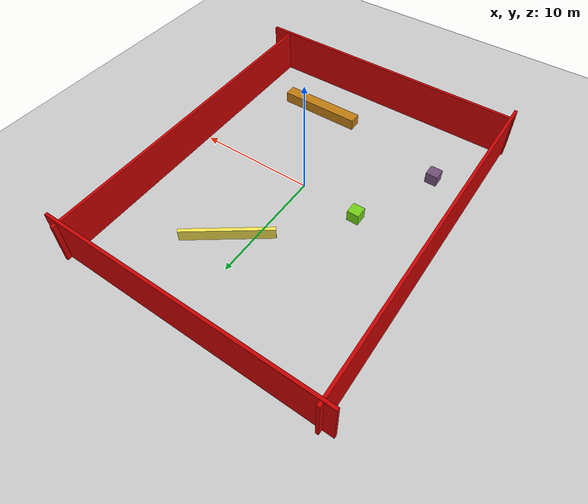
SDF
<sdf version="1.7">
 <world name="default">
  <light name="sun" type="directional">
   <pose>0 0 10 0 -0 0</pose>
   <diffuse>0.8 0.8 0.8 1</diffuse>
   <specular>0.2 0.2 0.2 1</specular>
   <attenuation>
    <range>1000</range>
    <constant>0.9</constant>
    <linear>0.01</linear>
    <quadratic>0.001</quadratic>
   </attenuation>
   <direction>-0.5 0.1 -0.9</direction>
   <spot><inner_angle>0</inner_angle><outer_angle>0</outer_angle><falloff>0</falloff></spot>
  </light>
  <model name="ground_plane">
   <static>1</static>
   <link name="link">
    <collision name="collision">
     <geometry><plane><normal>0 0 1</normal><size>100 100</size></plane></geometry>
     <surface>
      <contact><collide_bitmask>65535</collide_bitmask></contact>
      <friction><ode><mu>100</mu><mu2>50</mu2></ode></friction>
     </surface>
    </collision>
    <visual name="visual">
     <cast_shadows>0</cast_shadows>
     <geometry><plane><normal>0 0 1</normal><size>100 100</size></plane></geometry>
     <material>
      <script><uri>file://media/materials/scripts/gazebo.material</uri><name>Gazebo/Grey</name></script>
     </material>
    </visual>
   </link>
  </model>
  <gravity>0 0 -9.8</gravity>
  <magnetic_field>6e-06 2.3e-05 -4.2e-05</magnetic_field>
  <atmosphere type="adiabatic"/>
  <physics type="ode">
   <max_step_size>0.001</max_step_size>
   <real_time_factor>1</real_time_factor>
   <real_time_update_rate>1000</real_time_update_rate>
  </physics>
  <scene><ambient>0.4 0.4 0.4 1</ambient><background>0.7 0.7 0.7 1</background><shadows>1</shadows></scene>
  <spherical_coordinates>
   <surface_model>EARTH_WGS84</surface_model>
   <latitude_deg>0</latitude_deg>
   <longitude_deg>0</longitude_deg>
   <elevation>0</elevation>
   <heading_deg>0</heading_deg>
  </spherical_coordinates>
  <model name="test_house">
   <link name="link_0">
    <inertial>
     <mass>35.2275</mass>
     <inertia><ixx>103.791</ixx><ixy>0</ixy><ixz>0</ixz><iyy>1777.36</iyy><iyz>0</iyz><izz>1673.93</izz></inertia>
    </inertial>
    <pose>0.416863 18.6965 0.564615 0 -0 0</pose>
    <visual name="visual">
     <geometry><box><size>23.8779 0.248345 5.94087</size></box></geometry>
     <material>
      <lighting>1</lighting>
      <script><uri>file://media/materials/scripts/gazebo.material</uri><name>Gazebo/Grey</name></script>
      <shader type="pixel"><normal_map>__default__</normal_map></shader>
      <ambient>0.8 0 0 1</ambient>
      <diffuse>0.7 0.7 0.7 1</diffuse>
      <specular>0.01 0.01 0.01 1</specular>
      <emissive>0 0 0 1</emissive>
     </material>
    </visual>
    <collision name="collision">
     <geometry><box><size>23.8779 0.248345 5.94087</size></box></geometry>
     <surface>
      <friction>
       <ode><mu>1</mu><mu2>1</mu2><fdir1>0 0 0</fdir1><slip1>0</slip1><slip2>0</slip2></ode>
       <torsional>
        <coefficient>1</coefficient>
        <patch_radius>0</patch_radius>
        <surface_radius>0</surface_radius>
        <use_patch_radius>1</use_patch_radius>
        <ode><slip>0</slip></ode>
       </torsional>
      </friction>
      <bounce><restitution_coefficient>0</restitution_coefficient><threshold>1e+06</threshold></bounce>
      <contact>
       <collide_without_contact>0</collide_without_contact>
       <collide_without_contact_bitmask>1</collide_without_contact_bitmask>
       <collide_bitmask>1</collide_bitmask>
       <ode>
        <soft_cfm>0</soft_cfm>
        <soft_erp>0.2</soft_erp>
        <kp>1e+13</kp>
        <kd>1</kd>
        <max_vel>0.01</max_vel>
        <min_depth>0</min_depth>
       </ode>
       <bullet>
        <split_impulse>1</split_impulse>
        <split_impulse_penetration_threshold>-0.01</split_impulse_penetration_threshold>
        <soft_cfm>0</soft_cfm>
        <soft_erp>0.2</soft_erp>
        <kp>1e+13</kp>
        <kd>1</kd>
       </bullet>
      </contact>
     </surface>
    </collision>
   </link>
   <link name="link_0_clone">
    <inertial>
     <mass>33.2872</mass>
     <inertia><ixx>87.5845</ixx><ixy>0</ixy><ixz>0</ixz><iyy>1668.98</iyy><iyz>0</iyz><izz>1581.74</izz></inertia>
    </inertial>
    <pose>1.37652 -9.38264 0.564615 0 -0 0</pose>
    <visual name="visual">
     <geometry><box><size>23.8779 0.248345 5.6136</size></box></geometry>
     <material>
      <lighting>1</lighting>
      <script><uri>file://media/materials/scripts/gazebo.material</uri><name>Gazebo/Grey</name></script>
      <shader type="pixel"><normal_map>__default__</normal_map></shader>
      <ambient>0.8 0 0 1</ambient>
      <diffuse>0.7 0.7 0.7 1</diffuse>
      <specular>0.01 0.01 0.01 1</specular>
      <emissive>0 0 0 1</emissive>
     </material>
    </visual>
    <collision name="collision">
     <geometry><box><size>23.8779 0.248345 5.6136</size></box></geometry>
     <surface>
      <friction>
       <ode><mu>1</mu><mu2>1</mu2><fdir1>0 0 0</fdir1><slip1>0</slip1><slip2>0</slip2></ode>
       <torsional>
        <coefficient>1</coefficient>
        <patch_radius>0</patch_radius>
        <surface_radius>0</surface_radius>
        <use_patch_radius>1</use_patch_radius>
        <ode><slip>0</slip></ode>
       </torsional>
      </friction>
      <bounce><restitution_coefficient>0</restitution_coefficient><threshold>1e+06</threshold></bounce>
      <contact>
       <collide_without_contact>0</collide_without_contact>
       <collide_without_contact_bitmask>1</collide_without_contact_bitmask>
       <collide_bitmask>1</collide_bitmask>
       <ode>
        <soft_cfm>0</soft_cfm>
        <soft_erp>0.2</soft_erp>
        <kp>1e+13</kp>
        <kd>1</kd>
        <max_vel>0.01</max_vel>
        <min_depth>0</min_depth>
       </ode>
       <bullet>
        <split_impulse>1</split_impulse>
        <split_impulse_penetration_threshold>-0.01</split_impulse_penetration_threshold>
        <soft_cfm>0</soft_cfm>
        <soft_erp>0.2</soft_erp>
        <kp>1e+13</kp>
        <kd>1</kd>
       </bullet>
      </contact>
     </surface>
    </collision>
   </link>
   <link name="link_0_clone_0">
    <inertial>
     <mass>37.406</mass>
     <inertia><ixx>87.134</ixx><ixy>0</ixy><ixz>0</ixz><iyy>2622.64</iyy><iyz>0</iyz><izz>2535.89</izz></inertia>
    </inertial>
    <pose>11.5361 4.92739 0.564615 0 0 -1.55758</pose>
    <visual name="visual">
     <geometry><box><size>28.5212 0.248345 5.28122</size></box></geometry>
     <material>
      <lighting>1</lighting>
      <script><uri>file://media/materials/scripts/gazebo.material</uri><name>Gazebo/Grey</name></script>
      <shader type="pixel"><normal_map>__default__</normal_map></shader>
      <ambient>0.8 0 0 1</ambient>
     </material>
    </visual>
    <collision name="collision">
     <geometry><box><size>28.5212 0.248345 5.28122</size></box></geometry>
     <surface>
      <friction>
       <ode><mu>1</mu><mu2>1</mu2><fdir1>0 0 0</fdir1><slip1>0</slip1><slip2>0</slip2></ode>
       <torsional>
        <coefficient>1</coefficient>
        <patch_radius>0</patch_radius>
        <surface_radius>0</surface_radius>
        <use_patch_radius>1</use_patch_radius>
        <ode><slip>0</slip></ode>
       </torsional>
      </friction>
      <bounce><restitution_coefficient>0</restitution_coefficient><threshold>1e+06</threshold></bounce>
      <contact>
       <collide_without_contact>0</collide_without_contact>
       <collide_without_contact_bitmask>1</collide_without_contact_bitmask>
       <collide_bitmask>1</collide_bitmask>
       <ode>
        <soft_cfm>0</soft_cfm>
        <soft_erp>0.2</soft_erp>
        <kp>1e+13</kp>
        <kd>1</kd>
        <max_vel>0.01</max_vel>
        <min_depth>0</min_depth>
       </ode>
       <bullet>
        <split_impulse>1</split_impulse>
        <split_impulse_penetration_threshold>-0.01</split_impulse_penetration_threshold>
        <soft_cfm>0</soft_cfm>
        <soft_erp>0.2</soft_erp>
        <kp>1e+13</kp>
        <kd>1</kd>
       </bullet>
      </contact>
     </surface>
    </collision>
   </link>
   <link name="link_0_clone_1">
    <inertial>
     <mass>43.0353</mass>
     <inertia><ixx>123.451</ixx><ixy>0</ixy><ixz>0</ixz><iyy>3257.53</iyy><iyz>0</iyz><izz>3134.52</izz></inertia>
    </inertial>
    <pose>-10.4308 4.40456 0.564615 0 -0 1.57756</pose>
    <visual name="visual">
     <geometry><box><size>29.563 0.248345 5.86187</size></box></geometry>
     <material>
      <lighting>1</lighting>
      <script><uri>file://media/materials/scripts/gazebo.material</uri><name>Gazebo/Grey</name></script>
      <shader type="pixel"><normal_map>__default__</normal_map></shader>
      <ambient>0.8 0 0 1</ambient>
      <diffuse>0.7 0.7 0.7 1</diffuse>
      <specular>0.01 0.01 0.01 1</specular>
      <emissive>0 0 0 1</emissive>
     </material>
    </visual>
    <collision name="collision">
     <geometry><box><size>29.563 0.248345 5.86187</size></box></geometry>
     <surface>
      <friction>
       <ode><mu>1</mu><mu2>1</mu2><fdir1>0 0 0</fdir1><slip1>0</slip1><slip2>0</slip2></ode>
       <torsional>
        <coefficient>1</coefficient>
        <patch_radius>0</patch_radius>
        <surface_radius>0</surface_radius>
        <use_patch_radius>1</use_patch_radius>
        <ode><slip>0</slip></ode>
       </torsional>
      </friction>
      <bounce><restitution_coefficient>0</restitution_coefficient><threshold>1e+06</threshold></bounce>
      <contact>
       <collide_without_contact>0</collide_without_contact>
       <collide_without_contact_bitmask>1</collide_without_contact_bitmask>
       <collide_bitmask>1</collide_bitmask>
       <ode>
        <soft_cfm>0</soft_cfm>
        <soft_erp>0.2</soft_erp>
        <kp>1e+13</kp>
        <kd>1</kd>
        <max_vel>0.01</max_vel>
        <min_depth>0</min_depth>
       </ode>
       <bullet>
        <split_impulse>1</split_impulse>
        <split_impulse_penetration_threshold>-0.01</split_impulse_penetration_threshold>
        <soft_cfm>0</soft_cfm>
        <soft_erp>0.2</soft_erp>
        <kp>1e+13</kp>
        <kd>1</kd>
       </bullet>
      </contact>
     </surface>
    </collision>
   </link>
   <link name="link_2">
    <inertial>
     <mass>1</mass>
     <inertia>
      <ixx>0.166667</ixx>
      <ixy>0</ixy>
      <ixz>0</ixz>
      <iyy>0.166667</iyy>
      <iyz>0</iyz>
      <izz>0.166667</izz>
     </inertia>
    </inertial>
    <pose>-3.91195 3.91597 0 0 -0 0</pose>
    <visual name="visual">
     <geometry><box><size>1 1 1</size></box></geometry>
     <material>
      <lighting>1</lighting>
      <script><uri>file://media/materials/scripts/gazebo.material</uri><name>Gazebo/Grey</name></script>
      <shader type="pixel"><normal_map>__default__</normal_map></shader>
      <ambient>0.451 0.824 0.086 1</ambient>
      <diffuse>0.7 0.7 0.7 1</diffuse>
      <specular>0.01 0.01 0.01 1</specular>
      <emissive>0 0 0 1</emissive>
     </material>
    </visual>
    <collision name="collision">
     <geometry><box><size>1 1 1</size></box></geometry>
     <surface>
      <friction>
       <ode><mu>1</mu><mu2>1</mu2><fdir1>0 0 0</fdir1><slip1>0</slip1><slip2>0</slip2></ode>
       <torsional>
        <coefficient>1</coefficient>
        <patch_radius>0</patch_radius>
        <surface_radius>0</surface_radius>
        <use_patch_radius>1</use_patch_radius>
        <ode><slip>0</slip></ode>
       </torsional>
      </friction>
      <bounce><restitution_coefficient>0</restitution_coefficient><threshold>1e+06</threshold></bounce>
      <contact>
       <collide_without_contact>0</collide_without_contact>
       <collide_without_contact_bitmask>1</collide_without_contact_bitmask>
       <collide_bitmask>1</collide_bitmask>
       <ode>
        <soft_cfm>0</soft_cfm>
        <soft_erp>0.2</soft_erp>
        <kp>1e+13</kp>
        <kd>1</kd>
        <max_vel>0.01</max_vel>
        <min_depth>0</min_depth>
       </ode>
       <bullet>
        <split_impulse>1</split_impulse>
        <split_impulse_penetration_threshold>-0.01</split_impulse_penetration_threshold>
        <soft_cfm>0</soft_cfm>
        <soft_erp>0.2</soft_erp>
        <kp>1e+13</kp>
        <kd>1</kd>
       </bullet>
      </contact>
     </surface>
    </collision>
   </link>
   <link name="link_3">
    <inertial>
     <mass>2.23749</mass>
     <inertia><ixx>0.204015</ixx><ixy>0</ixy><ixz>0</ixz><iyy>10.0983</iyy><iyz>0</iyz><izz>9.92943</izz></inertia>
    </inertial>
    <pose>2.97623 10.9871 0 0 0 -2.51151</pose>
    <visual name="visual">
     <geometry><box><size>7.29101 0.306861 1</size></box></geometry>
     <material>
      <lighting>1</lighting>
      <script><uri>file://media/materials/scripts/gazebo.material</uri><name>Gazebo/Grey</name></script>
      <shader type="pixel"><normal_map>__default__</normal_map></shader>
      <ambient>0.988 0.914 0.31 1</ambient>
      <diffuse>0.7 0.7 0.7 1</diffuse>
      <specular>0.01 0.01 0.01 1</specular>
      <emissive>0 0 0 1</emissive>
     </material>
    </visual>
    <collision name="collision">
     <geometry><box><size>7.29101 0.306861 1</size></box></geometry>
     <surface>
      <friction>
       <ode><mu>1</mu><mu2>1</mu2><fdir1>0 0 0</fdir1><slip1>0</slip1><slip2>0</slip2></ode>
       <torsional>
        <coefficient>1</coefficient>
        <patch_radius>0</patch_radius>
        <surface_radius>0</surface_radius>
        <use_patch_radius>1</use_patch_radius>
        <ode><slip>0</slip></ode>
       </torsional>
      </friction>
      <bounce><restitution_coefficient>0</restitution_coefficient><threshold>1e+06</threshold></bounce>
      <contact>
       <collide_without_contact>0</collide_without_contact>
       <collide_without_contact_bitmask>1</collide_without_contact_bitmask>
       <collide_bitmask>1</collide_bitmask>
       <ode>
        <soft_cfm>0</soft_cfm>
        <soft_erp>0.2</soft_erp>
        <kp>1e+13</kp>
        <kd>1</kd>
        <max_vel>0.01</max_vel>
        <min_depth>0</min_depth>
       </ode>
       <bullet>
        <split_impulse>1</split_impulse>
        <split_impulse_penetration_threshold>-0.01</split_impulse_penetration_threshold>
        <soft_cfm>0</soft_cfm>
        <soft_erp>0.2</soft_erp>
        <kp>1e+13</kp>
        <kd>1</kd>
       </bullet>
      </contact>
     </surface>
    </collision>
   </link>
   <link name="link_4">
    <inertial>
     <mass>7.09695</mass>
     <inertia><ixx>1.18282</ixx><ixy>0</ixy><ixz>0</ixz><iyy>30.3791</iyy><iyz>0</iyz><izz>30.3791</izz></inertia>
    </inertial>
    <pose>5.20534 -5.18389 0 0 -0 0</pose>
    <visual name="visual">
     <geometry><box><size>7.09698 1 1</size></box></geometry>
     <material>
      <lighting>1</lighting>
      <script><uri>file://media/materials/scripts/gazebo.material</uri><name>Gazebo/Grey</name></script>
      <shader type="pixel"><normal_map>__default__</normal_map></shader>
      <ambient>0.757 0.49 0.067 1</ambient>
      <diffuse>0.7 0.7 0.7 1</diffuse>
      <specular>0.01 0.01 0.01 1</specular>
      <emissive>0 0 0 1</emissive>
     </material>
    </visual>
    <collision name="collision">
     <geometry><box><size>7.09698 1 1</size></box></geometry>
     <surface>
      <friction>
       <ode><mu>1</mu><mu2>1</mu2><fdir1>0 0 0</fdir1><slip1>0</slip1><slip2>0</slip2></ode>
       <torsional>
        <coefficient>1</coefficient>
        <patch_radius>0</patch_radius>
        <surface_radius>0</surface_radius>
        <use_patch_radius>1</use_patch_radius>
        <ode><slip>0</slip></ode>
       </torsional>
      </friction>
      <bounce><restitution_coefficient>0</restitution_coefficient><threshold>1e+06</threshold></bounce>
      <contact>
       <collide_without_contact>0</collide_without_contact>
       <collide_without_contact_bitmask>1</collide_without_contact_bitmask>
       <collide_bitmask>1</collide_bitmask>
       <ode>
        <soft_cfm>0</soft_cfm>
        <soft_erp>0.2</soft_erp>
        <kp>1e+13</kp>
        <kd>1</kd>
        <max_vel>0.01</max_vel>
        <min_depth>0</min_depth>
       </ode>
       <bullet>
        <split_impulse>1</split_impulse>
        <split_impulse_penetration_threshold>-0.01</split_impulse_penetration_threshold>
        <soft_cfm>0</soft_cfm>
        <soft_erp>0.2</soft_erp>
        <kp>1e+13</kp>
        <kd>1</kd>
       </bullet>
      </contact>
     </surface>
    </collision>
   </link>
   <link name="link_5">
    <inertial>
     <mass>1</mass>
     <inertia>
      <ixx>0.166667</ixx>
      <ixy>0</ixy>
      <ixz>0</ixz>
      <iyy>0.166667</iyy>
      <iyz>0</iyz>
      <izz>0.166667</izz>
     </inertia>
    </inertial>
    <pose>-7.03474 -3.14092 0 0 -0 0</pose>
    <visual name="visual">
     <geometry><box><size>1 1 1</size></box></geometry>
     <material>
      <lighting>1</lighting>
      <script><uri>file://media/materials/scripts/gazebo.material</uri><name>Gazebo/Grey</name></script>
      <shader type="pixel"><normal_map>__default__</normal_map></shader>
      <ambient>0.459 0.314 0.482 1</ambient>
      <diffuse>0.7 0.7 0.7 1</diffuse>
      <specular>0.01 0.01 0.01 1</specular>
      <emissive>0 0 0 1</emissive>
     </material>
    </visual>
    <collision name="collision">
     <geometry><box><size>1 1 1</size></box></geometry>
     <surface>
      <friction>
       <ode><mu>1</mu><mu2>1</mu2><fdir1>0 0 0</fdir1><slip1>0</slip1><slip2>0</slip2></ode>
       <torsional>
        <coefficient>1</coefficient>
        <patch_radius>0</patch_radius>
        <surface_radius>0</surface_radius>
        <use_patch_radius>1</use_patch_radius>
        <ode><slip>0</slip></ode>
       </torsional>
      </friction>
      <bounce><restitution_coefficient>0</restitution_coefficient><threshold>1e+06</threshold></bounce>
      <contact>
       <collide_without_contact>0</collide_without_contact>
       <collide_without_contact_bitmask>1</collide_without_contact_bitmask>
       <collide_bitmask>1</collide_bitmask>
       <ode>
        <soft_cfm>0</soft_cfm>
        <soft_erp>0.2</soft_erp>
        <kp>1e+13</kp>
        <kd>1</kd>
        <max_vel>0.01</max_vel>
        <min_depth>0</min_depth>
       </ode>
       <bullet>
        <split_impulse>1</split_impulse>
        <split_impulse_penetration_threshold>-0.01</split_impulse_penetration_threshold>
        <soft_cfm>0</soft_cfm>
        <soft_erp>0.2</soft_erp>
        <kp>1e+13</kp>
        <kd>1</kd>
       </bullet>
      </contact>
     </surface>
    </collision>
   </link>
   <static>1</static>
   <pose>-1.2648 -3.35668 0.481301 0 -0 0</pose>
  </model>
 </world>
</sdf>
